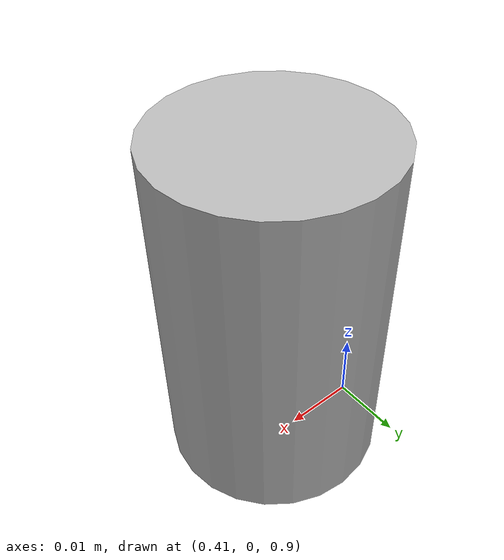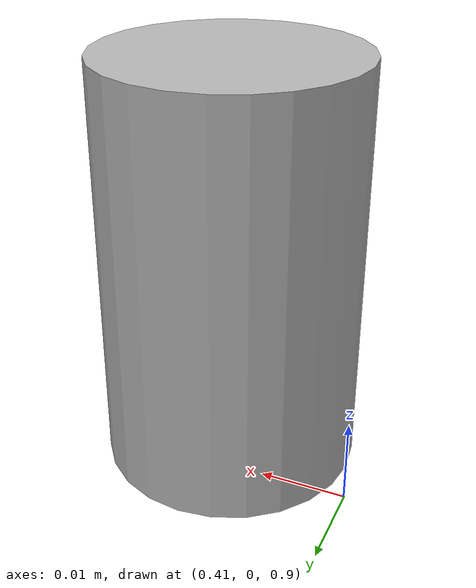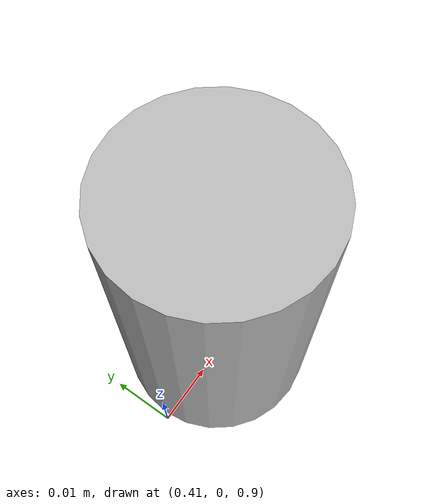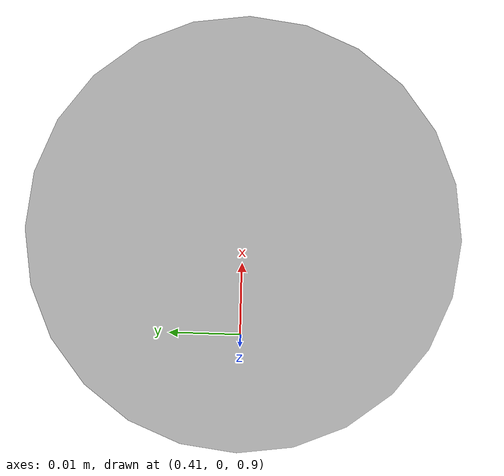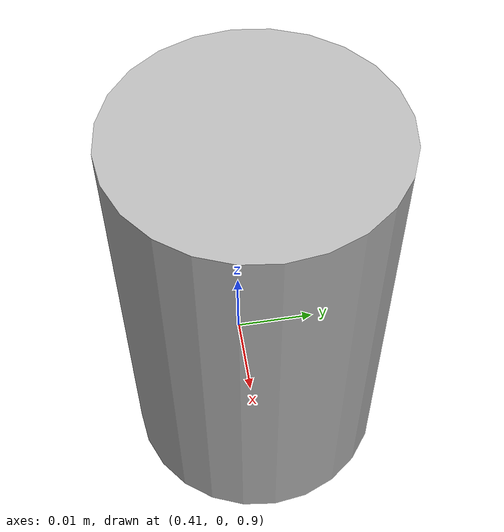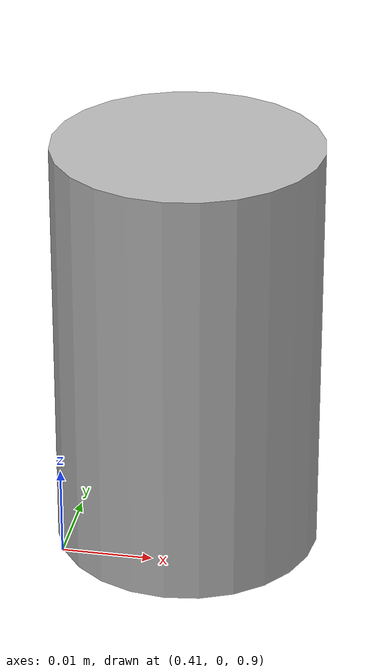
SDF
<?xml version="1.0" ?>
<sdf version="1.6">
  <world name="diff_drive">

    <physics name="1ms" type="ignored">
      <max_step_size>0.001</max_step_size>
      <real_time_factor>1.0</real_time_factor>
    </physics>
    <plugin
      filename="ignition-gazebo-physics-system"
      name="ignition::gazebo::systems::Physics">
    </plugin>
    <plugin
      filename="ignition-gazebo-user-commands-system"
      name="ignition::gazebo::systems::UserCommands">
    </plugin>
    <plugin
      filename="ignition-gazebo-scene-broadcaster-system"
      name="ignition::gazebo::systems::SceneBroadcaster">
    </plugin>

    <light type="directional" name="sun">
      <cast_shadows>true</cast_shadows>
      <pose>0 0 10 0 0 0</pose>
      <diffuse>1 1 1 1</diffuse>
      <specular>0.5 0.5 0.5 1</specular>
      <attenuation>
        <range>1000</range>
        <constant>0.9</constant>
        <linear>0.01</linear>
        <quadratic>0.001</quadratic>
      </attenuation>
      <direction>-0.5 0.1 -0.9</direction>
    </light>

    <model name="ground_plane">
      <static>true</static>
      <link name="link">
        <collision name="collision">
          <geometry>
            <plane>
              <normal>0 0 1</normal>
            </plane>
          </geometry>
        </collision>
        <visual name="visual">
          <geometry>
            <plane>
              <normal>0 0 1</normal>
              <size>100 100</size>
            </plane>
          </geometry>
          <material>
            <ambient>0.8 0.8 0.8 1</ambient>
            <diffuse>0.8 0.8 0.8 1</diffuse>
            <specular>0.8 0.8 0.8 1</specular>
          </material>
        </visual>
      </link>
    </model>

    <model name="x1">
      <pose>0 0 0.5 0 0 0</pose>
      <static>0</static>

      <link name="pan_gimbal_link">
      <pose frame="">0.424 0 0.427 0 -0 0</pose>
      <inertial>
        <pose frame="">0 0 0 0 -0 0</pose>
        <mass>0.1</mass>
        <inertia>
	  <ixx>0.000016875</ixx>
          <ixy>0</ixy>
          <ixz>0</ixz>
          <iyy>0.00000001</iyy>
          <iyz>0</iyz>
          <izz>0.000016875</izz>
        </inertia>
      </inertial>

      <collision name="pan_gimbal_link_collision">
      <pose frame="">0.0 0 0.0 0 -0 0</pose>

      <geometry>
        <cylinder>
          <length>0.045</length>
          <radius>0.014</radius>
        </cylinder>
      </geometry>

      <surface>
	<friction>
            <ode>
              <mu>0.5</mu>
              <mu2>1</mu2>
              <slip1>0.00062</slip1>
              <slip2>0</slip2>
              <fdir1>0 0 1</fdir1>
            </ode>
	</friction>
        <contact>
          <ode>
            <kp>1e+07</kp>
            <kd>1</kd>
          </ode>
        </contact>
      </surface>
      </collision>

      <visual name="pan_gimbal_link_visual">
        <pose frame="">0.0 0 0.0 0 -0 0</pose>
        <geometry>
          <cylinder>
            <length>0.045</length>
            <radius>0.014</radius>
          </cylinder>
        </geometry>
      </visual>

      </link>

    </model>

  </world>
</sdf>
